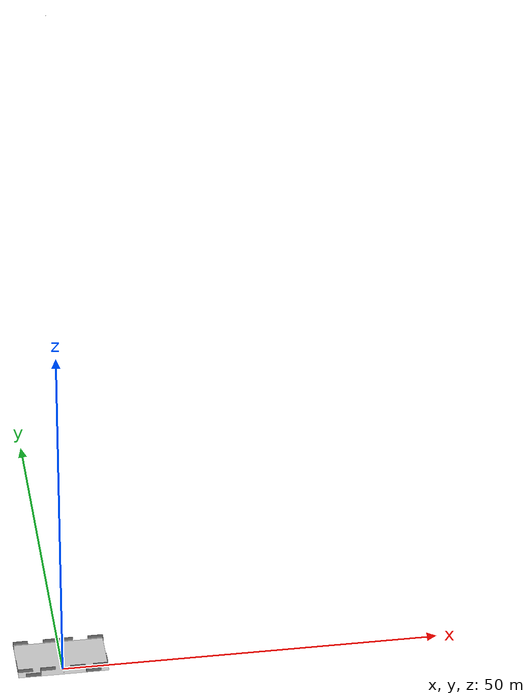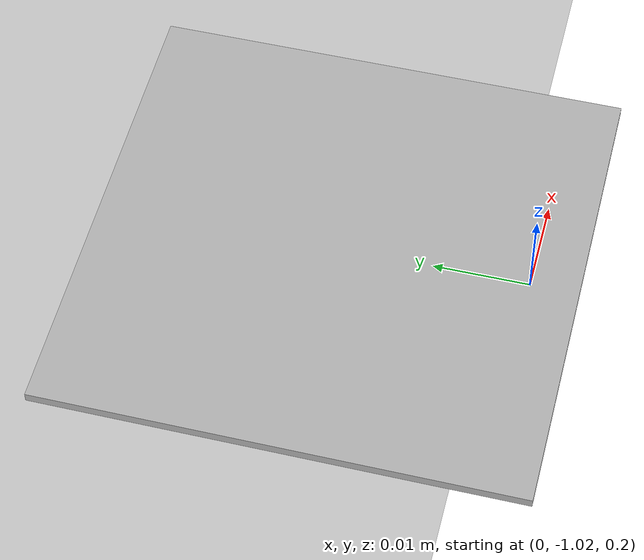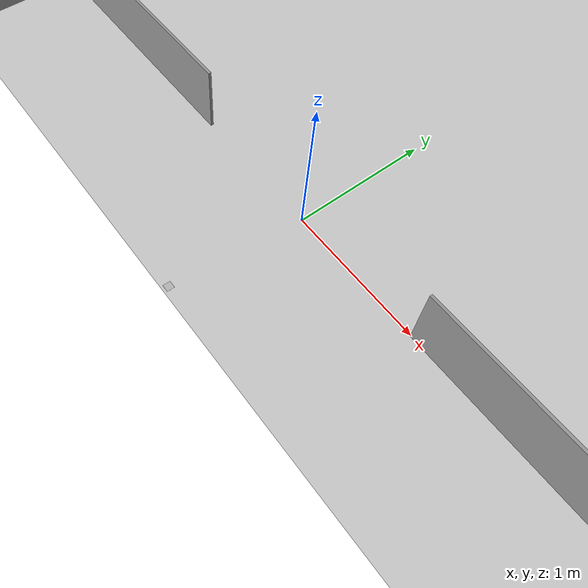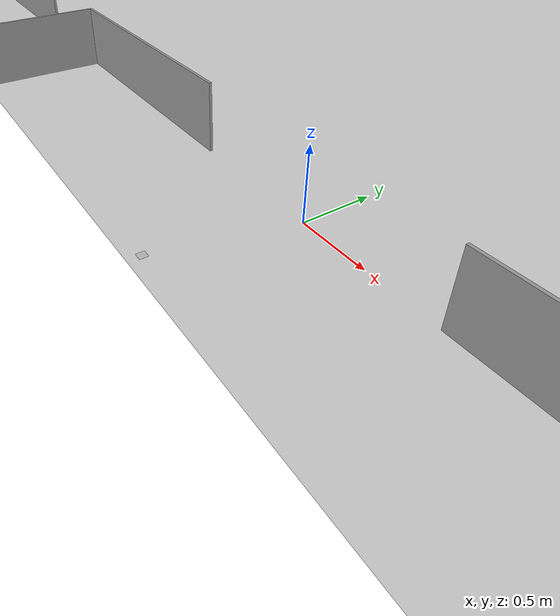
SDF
<sdf version="1.4">
 <world name="pyro_2015">
  <physics type="ode">
   <max_step_size>0.00125</max_step_size>
   <real_time_factor>1</real_time_factor>
   <real_time_update_rate>1000</real_time_update_rate>
  </physics>
  <include><uri>model://sun</uri></include>
  <include><uri>model://logistics_league_field</uri><pose>0 2.5 0 0 0 0</pose><name>llsf_field</name></include>
  <include><uri>model://overview_cam_ros</uri><name>top_camera</name></include>
  <include><name>tag_01</name><uri>model://tag</uri><pose>0 -1 0.2 0 0 0</pose></include>
  <include><name>tag_02</name><uri>model://tag</uri><pose>0 -1 0.2 0 0 0</pose></include>
  <include><name>tag_17</name><uri>model://tag</uri><pose>0 -1 0.2 0 0 0</pose></include>
  <include><name>tag_18</name><uri>model://tag</uri><pose>0 -1 0.2 0 0 0</pose></include>
  <include><name>tag_33</name><uri>model://tag</uri><pose>0 -1 0.2 0 0 0</pose></include>
  <include><name>tag_34</name><uri>model://tag</uri><pose>0 -1 0.2 0 0 0</pose></include>
  <include><name>tag_177</name><uri>model://tag</uri><pose>0 -1 0.2 0 0 0</pose></include>
  <include><name>tag_178</name><uri>model://tag</uri><pose>0 -1 0.2 0 0 0</pose></include>
  <include><name>tag_65</name><uri>model://tag</uri><pose>0 -1 0.2 0 0 0</pose></include>
  <include><name>tag_66</name><uri>model://tag</uri><pose>0 -1 0.2 0 0 0</pose></include>
  <include><name>tag_81</name><uri>model://tag</uri><pose>0 -1 0.2 0 0 0</pose></include>
  <include><name>tag_82</name><uri>model://tag</uri><pose>0 -1 0.2 0 0 0</pose></include>
  <include><name>tag_97</name><uri>model://tag</uri><pose>0 -1 0.2 0 0 0</pose></include>
  <include><name>tag_98</name><uri>model://tag</uri><pose>0 -1 0.2 0 0 0</pose></include>
  <include><name>tag_113</name><uri>model://tag</uri><pose>0 -1 0.2 0 0 0</pose></include>
  <include><name>tag_114</name><uri>model://tag</uri><pose>0 -1 0.2 0 0 0</pose></include>
  <include><name>tag_129</name><uri>model://tag</uri><pose>0 -1 0.2 0 0 0</pose></include>
  <include><name>tag_130</name><uri>model://tag</uri><pose>0 -1 0.2 0 0 0</pose></include>
  <include><name>tag_145</name><uri>model://tag</uri><pose>0 -1 0.2 0 0 0</pose></include>
  <include><name>tag_146</name><uri>model://tag</uri><pose>0 -1 0.2 0 0 0</pose></include>
  <include><name>tag_161</name><uri>model://tag</uri><pose>0 -1 0.2 0 0 0</pose></include>
  <include><name>tag_162</name><uri>model://tag</uri><pose>0 -1 0.2 0 0 0</pose></include>
  <include><name>tag_49</name><uri>model://tag</uri><pose>0 -1 0.2 0 0 0</pose></include>
  <include><name>tag_50</name><uri>model://tag</uri><pose>0 -1 0.2 0 0 0</pose></include>
  <plugin name="llsf_refbox_comm" filename="libllsf_refbox_comm.so"/>
  <plugin name="timesync" filename="libtimesync.so"/>
  <plugin name="mps_placement" filename="libmps_placement.so"/>
 </world>
</sdf>

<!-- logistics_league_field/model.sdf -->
<sdf version="1.5">
  <model name="Logistics League Field 2016">
    <pose>0 2.5 0 0 0 0</pose>
    <static>true</static>
    <link name="field">
      <pose>0 0 0.01 0 0 0</pose>
      <collision name="collision">
        <geometry>
          <plane>
            <normal>0 0 1</normal>
            <size>12 7</size>
          </plane>
        </geometry>
        <surface>
          <friction>
            <ode>
              <mu>100</mu>
              <mu2>50</mu2>
            </ode>
          </friction>
        </surface>
      </collision>
      <visual name="carpet">
        <cast_shadows>false</cast_shadows>
        <geometry>
          <plane>
            <normal>0 0 1</normal>
            <size>12 7</size>
          </plane>
        </geometry>
        <material>
          <script>
            <uri>model://logistics_league_field/materials/scripts/</uri>
            <uri>model://logistics_league_field/materials/textures/</uri>
            <name>Logistics_League_Field/Image</name>
          </script>
        </material>
      </visual>
    </link>

    <link name="wall_bottom_middle_left">
      <pose>-2 -2.5 0.25 0 0 1.570796327</pose>
      <visual name="wall_bottom_middle_left-visual">
        <geometry>
          <box>
			<size>.02 2 .5</size>
          </box>
        </geometry>
        <cast_shadows>false</cast_shadows>
        <material>
	  <script>
	    <uri>file://media/materials/scripts/gazebo.material</uri>
	    <name>Gazebo/Grey</name>
	  </script>
        </material>
      </visual>
      <collision name="wall_bottom_middle_left-collision">
        <geometry>
		    <box>
			  <size>.02 2 .5</size>
		    </box>
        </geometry>
      </collision>
    </link>

    <link name="wall_bottom_middle_left_down">
      <pose>-3 -3 0.25 0 0 0</pose>
      <visual name="wall_bottom_middle_left_down-visual">
        <geometry>
          <box>
			<size>.02 1 .5</size>
          </box>
        </geometry>
        <cast_shadows>false</cast_shadows>
        <material>
	  <script>
	    <uri>file://media/materials/scripts/gazebo.material</uri>
	    <name>Gazebo/Grey</name>
	  </script>
        </material>
      </visual>
      <collision name="wall_bottom_middle_left_down-collision">
        <geometry>
		    <box>
			  <size>.02 1 .5</size>
		    </box>
        </geometry>
      </collision>
    </link>

    <link name="wall_bottom_middle_left_outer">
      <pose>-4 -3.5 0.25 0 0 1.570796327</pose>
      <visual name="wall_bottom_middle_left_outer-visual">
        <geometry>
          <box>
			<size>.02 2 .5</size>
          </box>
        </geometry>
        <cast_shadows>false</cast_shadows>
        <material>
	  <script>
	    <uri>file://media/materials/scripts/gazebo.material</uri>
	    <name>Gazebo/Grey</name>
	  </script>
        </material>
      </visual>
      <collision name="wall_bottom_middle_left_outer-collision">
        <geometry>
		    <box>
			  <size>.02 2 .5</size>
		    </box>
        </geometry>
      </collision>
    </link>

    <link name="wall_bottom_left">
      <pose>-5 -2.5 0.25 0 0 1.570796327</pose>
      <visual name="wall_bottom_left-visual">
        <geometry>
          <box>
			<size>.02 2 .5</size>
          </box>
        </geometry>
        <cast_shadows>false</cast_shadows>
        <material>
	  <script>
	    <uri>file://media/materials/scripts/gazebo.material</uri>
	    <name>Gazebo/Grey</name>
	  </script>
        </material>
      </visual>
      <collision name="wall_bottom_left-collision">
        <geometry>
		    <box>
			  <size>.02 2 .5</size>
		    </box>
        </geometry>
      </collision>
    </link>

    <link name="wall_bottom_middle_right">
      <pose>2 -2.5 0.25 0 0 1.570796327</pose>
      <visual name="wall_bottom_middle_right-visual">
        <geometry>
          <box>
			<size>.02 2 .5</size>
          </box>
        </geometry>
        <cast_shadows>false</cast_shadows>
        <material>
	  <script>
	    <uri>file://media/materials/scripts/gazebo.material</uri>
	    <name>Gazebo/Grey</name>
	  </script>
        </material>
      </visual>
      <collision name="wall_bottom_middle_right-collision">
        <geometry>
		    <box>
			  <size>.02 2 .5</size>
		    </box>
        </geometry>
      </collision>
    </link>

    <link name="wall_bottom_middle_right_down">
      <pose>3 -3 0.25 0 0 0</pose>
      <visual name="wall_bottom_middle_right_down-visual">
        <geometry>
          <box>
			<size>.02 1 .5</size>
          </box>
        </geometry>
        <cast_shadows>false</cast_shadows>
        <material>
	  <script>
	    <uri>file://media/materials/scripts/gazebo.material</uri>
	    <name>Gazebo/Grey</name>
	  </script>
        </material>
      </visual>
      <collision name="wall_bottom_middle_right_down-collision">
        <geometry>
		    <box>
			  <size>.02 1 .5</size>
		    </box>
        </geometry>
      </collision>
    </link>

    <link name="wall_bottom_middle_right_outer">
      <pose>4 -3.5 0.25 0 0 1.570796327</pose>
      <visual name="wall_bottom_middle_right_outer-visual">
        <geometry>
          <box>
			<size>.02 2 .5</size>
          </box>
        </geometry>
        <cast_shadows>false</cast_shadows>
        <material>
	  <script>
	    <uri>file://media/materials/scripts/gazebo.material</uri>
	    <name>Gazebo/Grey</name>
	  </script>
        </material>
      </visual>
      <collision name="wall_bottom_middle_right_outer-collision">
        <geometry>
		    <box>
			  <size>.02 2 .5</size>
		    </box>
        </geometry>
      </collision>
    </link>

    <link name="wall_bottom_right">
      <pose>5 -2.5 0.25 0 0 1.570796327</pose>
      <visual name="wall_bottom_right-visual">
        <geometry>
          <box>
			<size>.02 2 .5</size>
          </box>
        </geometry>
        <cast_shadows>false</cast_shadows>
        <material>
	  <script>
	    <uri>file://media/materials/scripts/gazebo.material</uri>
	    <name>Gazebo/Grey</name>
	  </script>
        </material>
      </visual>
      <collision name="wall_bottom_right-collision">
        <geometry>
		    <box>
			  <size>.02 2 .5</size>
		    </box>
        </geometry>
      </collision>
    </link>

    <link name="wall_left_bottom">
      <pose>-6 -1.5 0.25 0 0 0</pose>
      <visual name="wall_left_bottom-visual">
        <geometry>
          <box>
			<size>.02 2 .5</size>
          </box>
        </geometry>
        <cast_shadows>false</cast_shadows>
        <material>
	  <script>
	    <uri>file://media/materials/scripts/gazebo.material</uri>
	    <name>Gazebo/Grey</name>
	  </script>
        </material>
      </visual>
      <collision name="wall_left_bottom-collision">
        <geometry>
		    <box>
			  <size>.02 2 .5</size>
		    </box>
        </geometry>
      </collision>
    </link>

    <link name="wall_left_top">
      <pose>-6 3 0.25 0 0 0</pose>
      <visual name="wall_left_top-visual">
        <geometry>
          <box>
			<size>.02 1 .5</size>
          </box>
        </geometry>
        <cast_shadows>false</cast_shadows>
        <material>
	  <script>
	    <uri>file://media/materials/scripts/gazebo.material</uri>
	    <name>Gazebo/Grey</name>
	  </script>
        </material>
      </visual>
      <collision name="wall_left_top-collision">
        <geometry>
		    <box>
			  <size>.02 1 .5</size>
		    </box>
        </geometry>
      </collision>
    </link>

    <link name="wall_right_bottom">
      <pose>6 -1.5 0.25 0 0 0</pose>
      <visual name="wall_right_bottom-visual">
        <geometry>
          <box>
			<size>.02 2 .5</size>
          </box>
        </geometry>
        <cast_shadows>false</cast_shadows>
        <material>
	  <script>
	    <uri>file://media/materials/scripts/gazebo.material</uri>
	    <name>Gazebo/Grey</name>
	  </script>
        </material>
      </visual>
      <collision name="wall_right_bottom-collision">
        <geometry>
		    <box>
			  <size>.02 2 .5</size>
		    </box>
        </geometry>
      </collision>
    </link>

    <link name="wall_right_top">
      <pose>6 3 0.25 0 0 0</pose>
      <visual name="wall_right_top-visual">
        <geometry>
          <box>
			<size>.02 1 .5</size>
          </box>
        </geometry>
        <cast_shadows>false</cast_shadows>
        <material>
	  <script>
	    <uri>file://media/materials/scripts/gazebo.material</uri>
	    <name>Gazebo/Grey</name>
	  </script>
        </material>
      </visual>
      <collision name="wall_right_top-collision">
        <geometry>
		    <box>
			  <size>.02 1 .5</size>
		    </box>
        </geometry>
      </collision>
    </link>

    <link name="wall_top_middle">
      <pose>0 3.5 0.25 0 0 1.570796327</pose>
      <visual name="wall_top_middle-visual">
        <geometry>
          <box>
			<size>.02 4 .5</size>
          </box>
        </geometry>
        <cast_shadows>false</cast_shadows>
        <material>
	  <script>
	    <uri>file://media/materials/scripts/gazebo.material</uri>
	    <name>Gazebo/Grey</name>
	  </script>
        </material>
      </visual>
      <collision name="wall_top_middle-collision">
        <geometry>
		    <box>
			  <size>.02 4 .5</size>
		    </box>
        </geometry>
      </collision>
    </link>

    <link name="wall_top_left">
      <pose>-5 3.5 0.25 0 0 1.570796327</pose>
      <visual name="wall_top_left-visual">
        <geometry>
          <box>
			<size>.02 2 .5</size>
          </box>
        </geometry>
        <cast_shadows>false</cast_shadows>
        <material>
	  <script>
	    <uri>file://media/materials/scripts/gazebo.material</uri>
	    <name>Gazebo/Grey</name>
	  </script>
        </material>
      </visual>
      <collision name="wall_top_left-collision">
        <geometry>
		    <box>
			  <size>.02 2 .5</size>
		    </box>
        </geometry>
      </collision>
    </link>

    <link name="wall_top_right">
      <pose>5 3.5 0.25 0 0 1.570796327</pose>
      <visual name="wall_top_right-visual">
        <geometry>
          <box>
			<size>.02 2 .5</size>
          </box>
        </geometry>
        <cast_shadows>false</cast_shadows>
        <material>
	  <script>
	    <uri>file://media/materials/scripts/gazebo.material</uri>
	    <name>Gazebo/Grey</name>
	  </script>
        </material>
      </visual>
      <collision name="wall_top_right-collision">
        <geometry>
		    <box>
			  <size>.02 2 .5</size>
		    </box>
        </geometry>
      </collision>
    </link>

  </model>
</sdf>

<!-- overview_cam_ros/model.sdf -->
<sdf version="1.4">
	<model name="top_camera">
		<static>true</static>

		<link name="body">
			<pose>0 2.5 100 0 1.57 1.57</pose>

			<gravity>false</gravity>

			<inertial>
				<mass>0.02</mass>
			</inertial>

			<visual name="visual">
				<pose>0 0 0 0 1.6 0</pose>
				<geometry>
					<cylinder>
						<length>0.02</length>
						<radius>0.03</radius>
					</cylinder>
				</geometry>
				<cast_shadows>false</cast_shadows>
				<material>
					<ambient>0.0 0.0 0.0 0.1</ambient>
					<diffuse>0.0 0.0 0.0 0.11</diffuse>
				</material>
			</visual>

			<sensor type="camera" name="top_camera">
				<update_rate>30.0</update_rate>
				<camera name="top_camera">
					<horizontal_fov>0.13</horizontal_fov>
					<image>
						<width>1200</width>
						<height>700</height>
						<format>R8G8B8</format>
					</image>
					<clip>
						<near>0.02</near>
						<far>300</far>
					</clip>
				</camera>
				<plugin name="camera_controller" filename="libgazebo_ros_camera.so">
					<alwaysOn>true</alwaysOn>
					<updateRate>0.0</updateRate>
					<cameraName>gazebo/camera/top_camera</cameraName>
					<imageTopicName>image_raw</imageTopicName>
					<cameraInfoTopicName>camera_info</cameraInfoTopicName>
					<frameName>top_camera_link</frameName>
					<hackBaseline>0.07</hackBaseline>
					<distortionK1>0.0</distortionK1>
					<distortionK2>0.0</distortionK2>
					<distortionK3>0.0</distortionK3>
					<distortionT1>0.0</distortionT1>
					<distortionT2>0.0</distortionT2>
				</plugin>
			</sensor>
		</link>
	</model>
</sdf>

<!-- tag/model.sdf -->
<sdf version="1.5">
  <model name="tag">
    <static>true</static>

    <link name="link">
      <collision name="collision">
        <geometry>
          <mesh>
            <uri>model://tag/meshes/tag1.dae</uri>
          </mesh>
        </geometry>
      </collision>
      <visual name="visual">
        <geometry>
          <mesh>
            <uri>model://tag/meshes/tag1.dae</uri>
          </mesh>
        </geometry>
      </visual>
    </link>
  </model>
</sdf>
